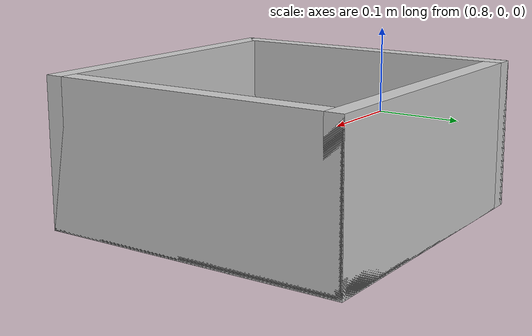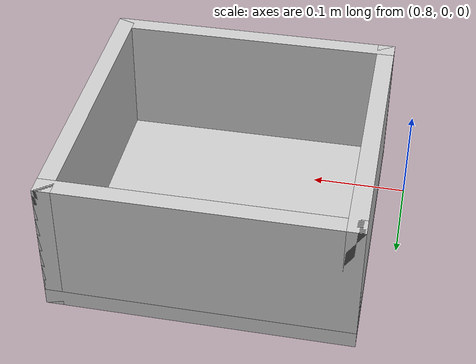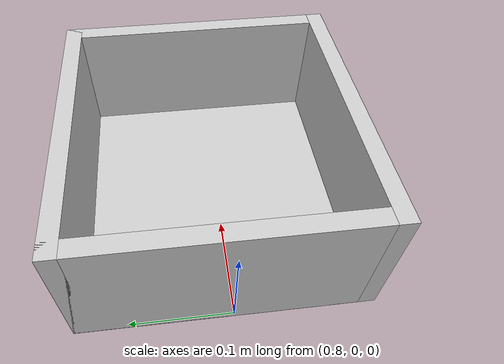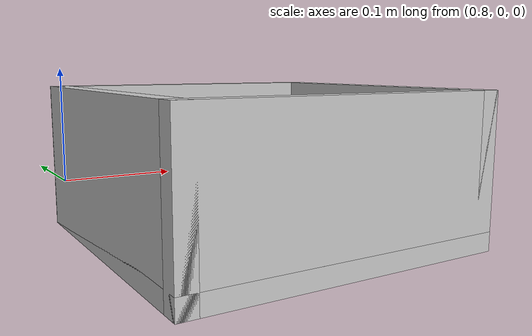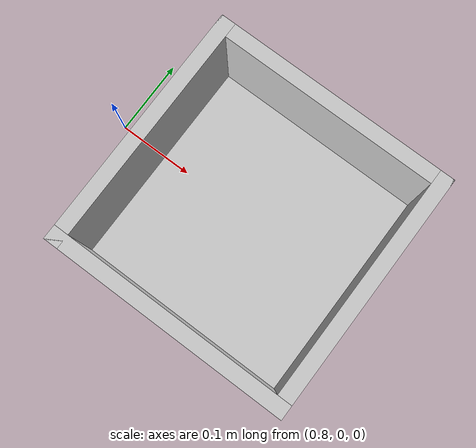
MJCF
<mujoco model="bin">
    <compiler angle="radian" autolimits="true" />
    <option impratio="10" />
    <default>
        <default class="visual">
            <geom type="mesh" contype="0" conaffinity="0" group="2" />
        </default>
        <default class="collision">
            <geom type="mesh" group="3" />
        </default>
    </default>

    <asset>
        <material name="grey_bin" rgba="0.8 0.8 0.8 1" />
    </asset>
    <worldbody>
        <body name="bin" pos="1.0 0.0 0.0" euler="0 0 0">
            <!-- bottom -->
            <geom size="0.17 0.17 0.01" class="visual" type="box" pos="0 0 -0.07"
                material="grey_bin" />
            <!-- left and right -->
            <geom size="0.17 0.01 0.08" class="visual" type="box" pos="0 0.16 0" material="grey_bin" />
            <geom size="0.17 0.01 0.08" class="visual" type="box" pos="0 -0.16 0"
                material="grey_bin" />
            <!-- front and back -->
            <geom size="0.01 0.17 0.08" class="visual" type="box" pos="0.16 0 0" material="grey_bin" />
            <geom size="0.01 0.17 0.08" class="visual" type="box" pos="-0.16 0 0"
                material="grey_bin" />

            <!-- bottom -->
            <geom size="0.17 0.17 0.01" class="collision" type="box" pos="0 0 -0.07" />
            <!-- left and right -->
            <geom size="0.17 0.01 0.08" class="collision" type="box" pos="0 0.16 0" />
            <geom size="0.17 0.01 0.08" class="collision" type="box" pos="0 -0.16 0" />
            <!-- front and back -->
            <geom size="0.01 0.17 0.08" class="collision" type="box" pos="0.16 0 0" />
            <geom size="0.01 0.17 0.08" class="collision" type="box" pos="-0.16 0 0" />
        </body>
    </worldbody>
</mujoco>
